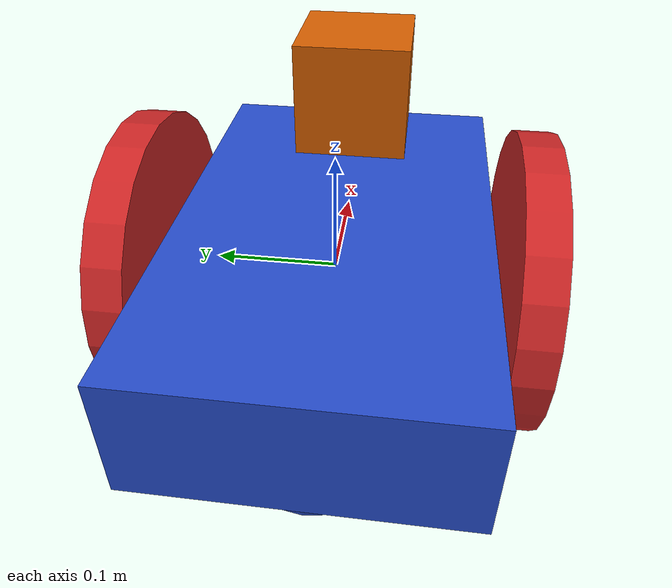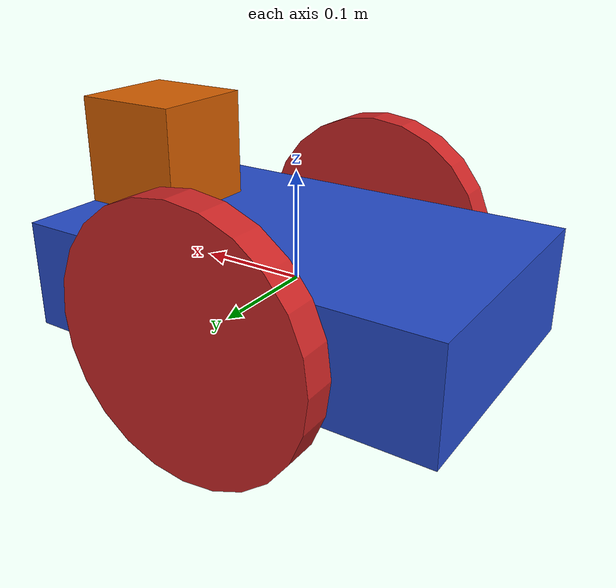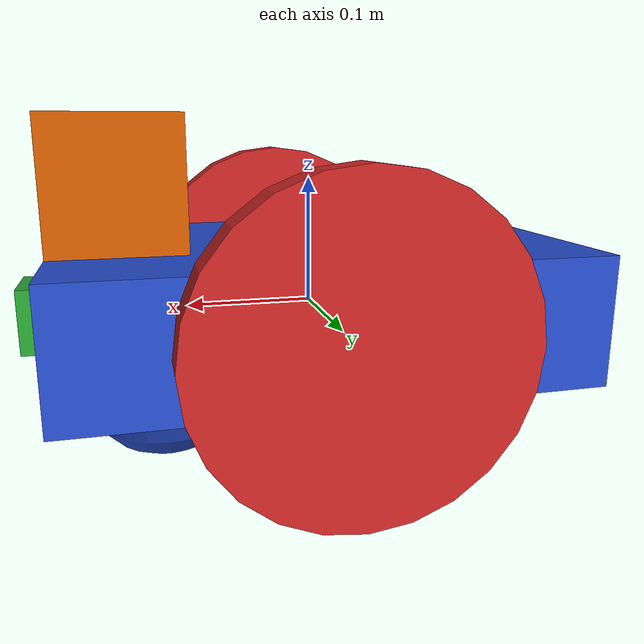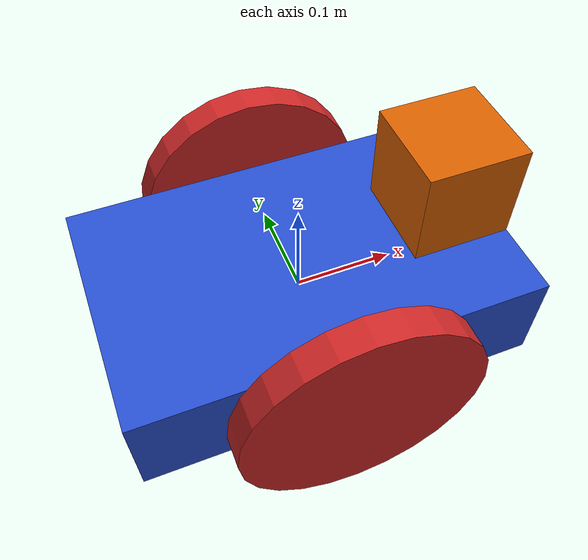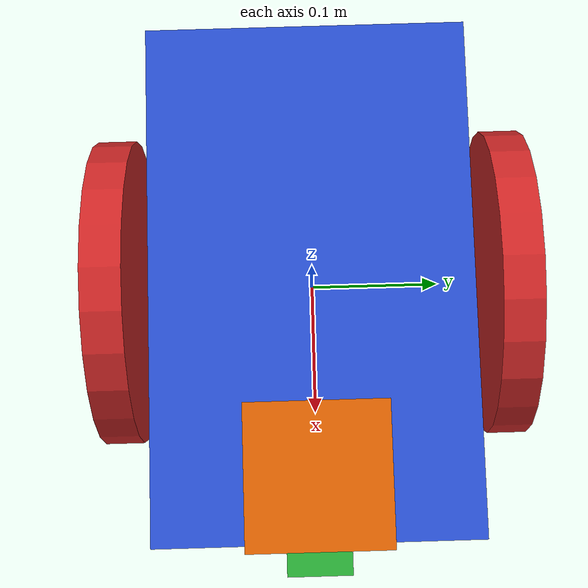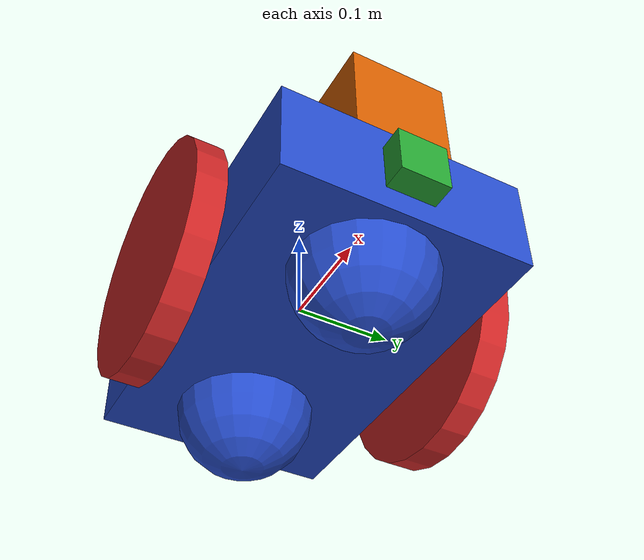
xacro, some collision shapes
<robot name="my_robot" xmlns:xacro="http://www.ros.org/wiki/xacro">

  <link name="robot_footprint"></link>
  <xacro:include filename="$(find my_robot)/urdf/my_robot.gazebo" />

  <joint name="robot_footprint_joint" type="fixed">
    <origin xyz="0 0 0" rpy="0 0 0" />
    <parent link="robot_footprint"/>
    <child link="chassis" />
  </joint>

  <link name='chassis'>
    <pose>0 0 0.1 0 0 0</pose>

    <inertial>
      <mass value="15.0"/>
      <origin xyz="0.0 0 0" rpy=" 0 0 0"/>
      <inertia
          ixx="0.1" ixy="0" ixz="0"
          iyy="0.1" iyz="0"
          izz="0.1"
      />
    </inertial>

    <collision name='collision'>
      <origin xyz="0 0 0" rpy=" 0 0 0"/>
      <geometry>
        <box size=".4 .25 .1"/>
      </geometry>
    </collision>

    <visual name='chassis_visual'>
      <origin xyz="0 0 0" rpy=" 0 0 0"/>
      <geometry>
        <box size=".4 .25 .1"/>
      </geometry>
    </visual>

    <collision name='back_caster_collision'>
      <origin xyz="-0.12 0 -0.05" rpy=" 0 0 0"/>
      <geometry>
        <sphere radius="0.0699"/>
      </geometry>
    </collision>

    <visual name='back_caster_visual'>
      <origin xyz="-0.12 0 -0.05" rpy=" 0 0 0"/>
      <geometry>
        <sphere radius="0.07"/>
      </geometry>
    </visual>

    <collision name='front_caster_collision'>
      <origin xyz="0.12 0 -0.05" rpy=" 0 0 0"/>
      <geometry>
        <sphere radius="0.0699"/>
      </geometry>
    </collision>

    <visual name='front_caster_visual'>
      <origin xyz="0.12 0 -0.05" rpy=" 0 0 0"/>
      <geometry>
        <sphere radius="0.07"/>
      </geometry>
    </visual>

  </link>

  <link name="left_wheel">
    <inertial>
      <mass value="5.0"/>
      <origin xyz="0 0 0" rpy="0 1.5707 1.5707"/>
      <inertia
          ixx="0.1" ixy="0" ixz="0"
          iyy="0.1" iyz="0"
          izz="0.1"
      />
    </inertial>

    <collision name='left_wheel_collision'>
      <origin xyz="0 0 0" rpy=" 0 1.5707 1.5707"/>
      <geometry>
         <cylinder radius="0.12" length="0.03"/>
      </geometry>
    </collision>

    <visual name='left_wheel_visual'>
      <origin xyz="0 0 0" rpy=" 0 1.5707 1.5707"/>
      <geometry>
         <cylinder radius="0.12" length="0.03"/>
      </geometry>
    </visual>

  </link>

 <link name='right_wheel'>
    <inertial>
      <mass value="5.0"/>
      <origin xyz="0 0 0" rpy=" 0 1.5707 1.5707"/>
      <inertia
          ixx="0.1" ixy="0" ixz="0"
          iyy="0.1" iyz="0"
          izz="0.1"
      />
    </inertial>

    <collision name='right_wheel_collision'>
      <origin xyz="0 0 0" rpy=" 0 1.5707 1.5707"/>
      <geometry>
         <cylinder radius="0.12" length="0.03"/>
      </geometry>
    </collision>

    <visual name='right_wheel_visual'>
      <origin xyz="0 0 0" rpy=" 0 1.5707 1.5707"/>
      <geometry>
         <cylinder radius="0.12" length="0.03"/>
      </geometry>
    </visual>

  </link>

 <link name='camera'>

    <inertial>
      <mass value="0.1"/>
      <origin xyz="0 0 0" rpy=" 0 0 0"/>
      <inertia
          ixx="1e-6" ixy="0" ixz="0"
          iyy="1e-6" iyz="0"
          izz="1e-6"
      />
    </inertial>

    <collision name='camera_collision'>
      <origin xyz="0 0 0" rpy=" 0 0 0"/>
      <geometry>
         <box size="0.05 0.05 0.05"/>
      </geometry>
    </collision>

    <visual name='camera_visual'>
      <origin xyz="0 0 0" rpy=" 0 0 0"/>
      <geometry>
         <box size="0.05 0.05 0.05"/>
      </geometry>
    </visual>

  </link>

 <link name='hokuyo'>

    <inertial>
      <mass value="1e-5"/>
      <origin xyz="0 0 0" rpy=" 0 0 0"/>
      <inertia
          ixx="1e-6" ixy="0" ixz="0"
          iyy="1e-6" iyz="0"
          izz="1e-6"
      />
    </inertial>

    <collision name='hokuyo_collision'>
      <origin xyz="0 0 0" rpy=" 0 0 0"/>
      <geometry>
         <box size="0.1 0.1 0.1"/>
      </geometry>
    </collision>

    <visual name='hokuyo_visual'>
      <origin xyz="0 0 0" rpy=" 0 0 0"/>
      <geometry>
         <mesh filename="package://my_robot/meshes/hokuyo.dae"/>
      </geometry>
    </visual>

  </link>

  <!--Joints-->
  <joint type="continuous" name="left_wheel_hinge">
    <origin xyz="0 0.15 0" rpy="0 0 0"/>
    <child link="left_wheel"/>
    <parent link="chassis"/>
    <axis xyz="0 1 0" rpy="0 0 0"/>
    <limit effort="10000" velocity="1000"/>
    <dynamics damping="1.0" friction="1.0"/>
  </joint>

  <joint type="continuous" name="right_wheel_hinge">
    <origin xyz="0 -0.15 0" rpy="0 0 0"/>
    <child link="right_wheel"/>
    <parent link="chassis"/>
    <axis xyz="0 1 0" rpy="0 0 0"/>
    <limit effort="10000" velocity="1000"/>
    <dynamics damping="1.0" friction="1.0"/>
  </joint>

  <joint type="fixed" name="camera_joint">
    <origin xyz="0.2 0 0" rpy="0 0 0"/>
    <child link="camera"/>
    <parent link="chassis"/>
    <axis xyz="0 1 0" rpy="0 0 0"/>
  </joint>

  <joint type="fixed" name="camera_optical_joint">
    <origin xyz="0 0 0" rpy="-1.5707 0 -1.5707"/>
    <child link="camera_optical"/>
    <parent link="camera"/>
  </joint>

  <link name="camera_optical">
  </link>

  <link name="camera_rgbd_frame">
  </link>

  <joint name="camera_rgbd_joint" type="fixed">
    <origin xyz="0 0 0" rpy="-${pi/2} 0 -${pi/2}"/>
    <parent link="camera"/>
    <child link="camera_rgbd_frame"/>
  </joint>

  <joint type="fixed" name="hokuyo_joint">
    <origin xyz="0.15 0 0.1" rpy="0 0 0"/>
    <child link="hokuyo"/>
    <parent link="chassis"/>
    <axis xyz="0 1 0" rpy="0 0 0"/>
  </joint>

 <gazebo reference="left_wheel">
    <material>Gazebo/Red</material>
 </gazebo>

 <gazebo reference="right_wheel">
    <material>Gazebo/Red</material>
 </gazebo>

 <gazebo reference="chassis">
    <material>Gazebo/Blue</material>
 </gazebo>

 <gazebo reference="camera">
    <material>Gazebo/Green</material>
 </gazebo>

</robot>
